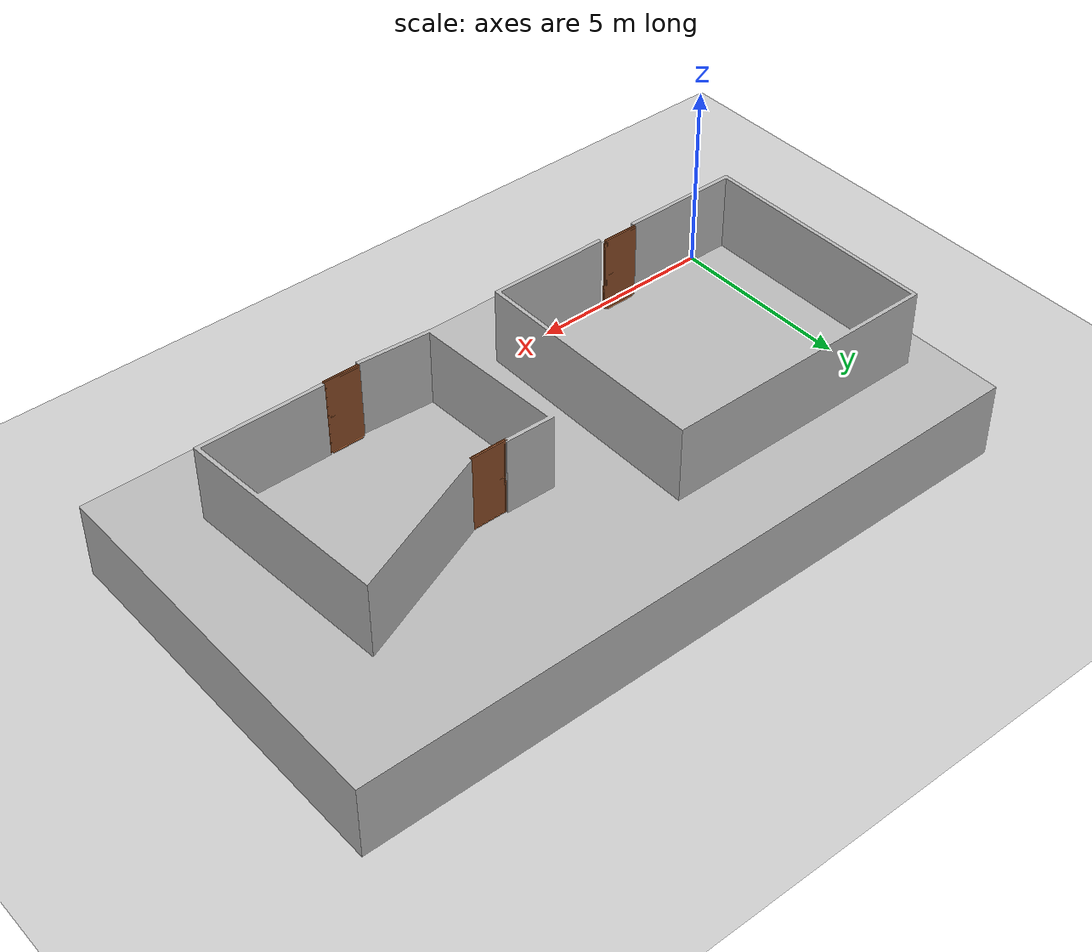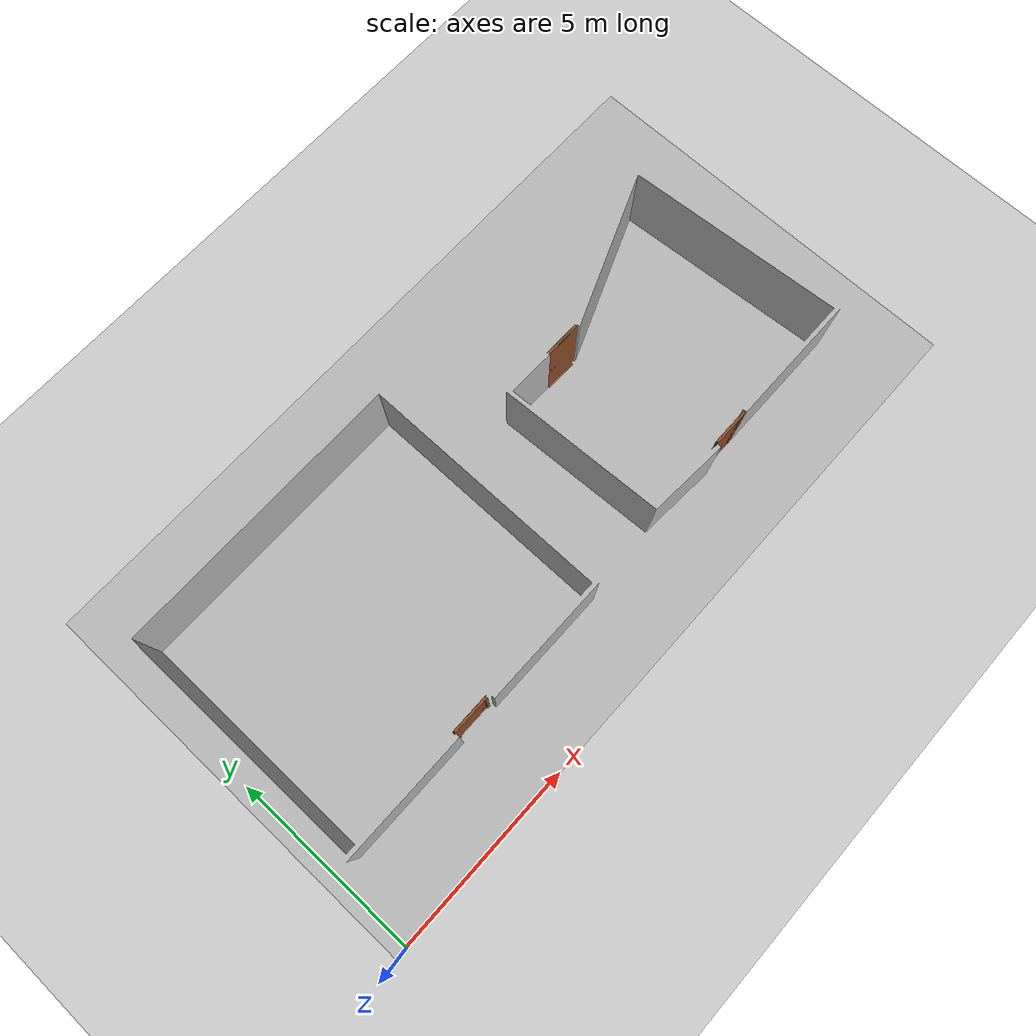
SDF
<?xml version="1.0" ?>
<sdf version="1.6">
    <world name="escenariopruebaAutomatizado2">
        <include>
            <uri>model://ground_plane</uri>
        </include>
        <include>
            <uri>model://sun</uri>
        </include>
        <include>
            <uri>model://escenariopruebaAutomatizado2</uri>
            <pose>0 0 0 0 0 0</pose>
        </include>
    </world>
</sdf>

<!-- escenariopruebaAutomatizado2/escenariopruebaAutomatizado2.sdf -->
<sdf version="1.6">
    <model name="escenariopruebaAutomatizado2">
        <static>false</static>
        <link name="pared_link">
            <pose>0 0 0 0 0 0</pose>
            <gravity>false</gravity>
            <self_collide>false</self_collide>
            <visual name="pared_visual">
                <geometry>
                    <mesh>
                        <uri>model://escenariopruebaAutomatizado2/meshes/walls_slabs.dae</uri>
                    </mesh>
                </geometry>
            </visual>
            <collision name="pared_collision">
                <geometry>
                    <mesh>
                        <uri>model://escenariopruebaAutomatizado2/meshes/walls_slabs.dae</uri>
                    </mesh>
                </geometry>
            </collision>
            <inertial>
                <mass>100.0</mass>
                <inertia>
                    <ixx>10.0</ixx>
                    <iyy>10.0</iyy>
                    <izz>10.0</izz>
                    <ixy>0.0</ixy>
                    <ixz>0.0</ixz>
                    <iyz>0.0</iyz>
                </inertia>
            </inertial>
        </link>
        <link name="0S0NG4owH0uBivEhLsmS3F_link">
            <pose>3.99999976158142 2.02034997940063 1.97499990463257 0 0 0</pose>
            <visual name="0S0NG4owH0uBivEhLsmS3F_visual">
                <geometry>
                    <mesh>
                        <uri>model://escenariopruebaAutomatizado2/meshes/0S0NG4owH0uBivEhLsmS3F.dae</uri>
                    </mesh>
                </geometry>
            </visual>
            <collision name="0S0NG4owH0uBivEhLsmS3F_collision">
                <geometry>
                    <mesh>
                        <uri>model://escenariopruebaAutomatizado2/meshes/0S0NG4owH0uBivEhLsmS3F.dae</uri>
                    </mesh>
                </geometry>
            </collision>
        </link>
        <joint name="joint_0S0NG4owH0uBivEhLsmS3F" type="revolute">
            <parent>pared_link</parent>
            <child>0S0NG4owH0uBivEhLsmS3F_link</child>
            <pose>0 0 0 0 0 0</pose>
            <axis>
                <xyz>0 0 1</xyz>
                <limit>
                    <lower>-1.57</lower>
                    <upper>1.57</upper>
                    <effort>10</effort>
                    <velocity>1.0</velocity>
                </limit>
                <dynamics>
                    <damping>0.001</damping>
                    <friction>0.05</friction>
                </dynamics>
            </axis>
        </joint>
        <link name="0ESY8acebCD9KC_SRxdRoR_link">
            <pose>12.0 2.02034997940063 2.0 0 0 0</pose>
            <visual name="0ESY8acebCD9KC_SRxdRoR_visual">
                <geometry>
                    <mesh>
                        <uri>model://escenariopruebaAutomatizado2/meshes/0ESY8acebCD9KC_SRxdRoR.dae</uri>
                    </mesh>
                </geometry>
            </visual>
            <collision name="0ESY8acebCD9KC_SRxdRoR_collision">
                <geometry>
                    <mesh>
                        <uri>model://escenariopruebaAutomatizado2/meshes/0ESY8acebCD9KC_SRxdRoR.dae</uri>
                    </mesh>
                </geometry>
            </collision>
        </link>
        <joint name="joint_0ESY8acebCD9KC_SRxdRoR" type="revolute">
            <parent>pared_link</parent>
            <child>0ESY8acebCD9KC_SRxdRoR_link</child>
            <pose>0 0 0 0 0 0</pose>
            <axis>
                <xyz>0 0 1</xyz>
                <limit>
                    <lower>-1.57</lower>
                    <upper>1.57</upper>
                    <effort>10</effort>
                    <velocity>1.0</velocity>
                </limit>
                <dynamics>
                    <damping>0.001</damping>
                    <friction>0.05</friction>
                </dynamics>
            </axis>
        </joint>
        <link name="3xuUtrQBT7shhrA3mjVmkT_link">
            <pose>12.0 6.0 2.0 0 0 0</pose>
            <visual name="3xuUtrQBT7shhrA3mjVmkT_visual">
                <geometry>
                    <mesh>
                        <uri>model://escenariopruebaAutomatizado2/meshes/3xuUtrQBT7shhrA3mjVmkT.dae</uri>
                    </mesh>
                </geometry>
            </visual>
            <collision name="3xuUtrQBT7shhrA3mjVmkT_collision">
                <geometry>
                    <mesh>
                        <uri>model://escenariopruebaAutomatizado2/meshes/3xuUtrQBT7shhrA3mjVmkT.dae</uri>
                    </mesh>
                </geometry>
            </collision>
        </link>
        <joint name="joint_3xuUtrQBT7shhrA3mjVmkT" type="revolute">
            <parent>pared_link</parent>
            <child>3xuUtrQBT7shhrA3mjVmkT_link</child>
            <pose>0 0 0 0 0 0</pose>
            <axis>
                <xyz>0 0 1</xyz>
                <limit>
                    <lower>-1.57</lower>
                    <upper>1.57</upper>
                    <effort>10</effort>
                    <velocity>1.0</velocity>
                </limit>
                <dynamics>
                    <damping>0.001</damping>
                    <friction>0.05</friction>
                </dynamics>
            </axis>
        </joint>
    </model>
</sdf>
